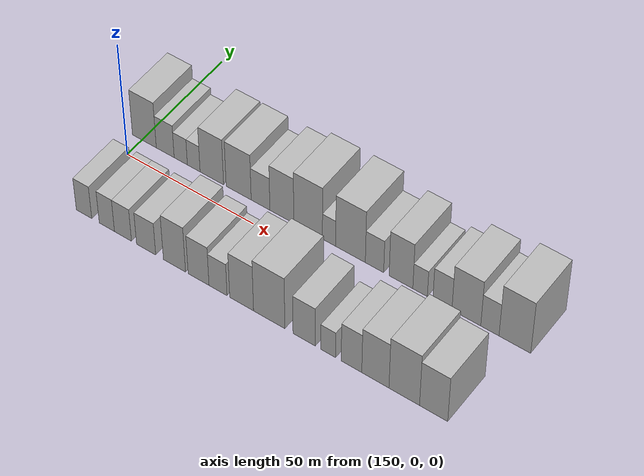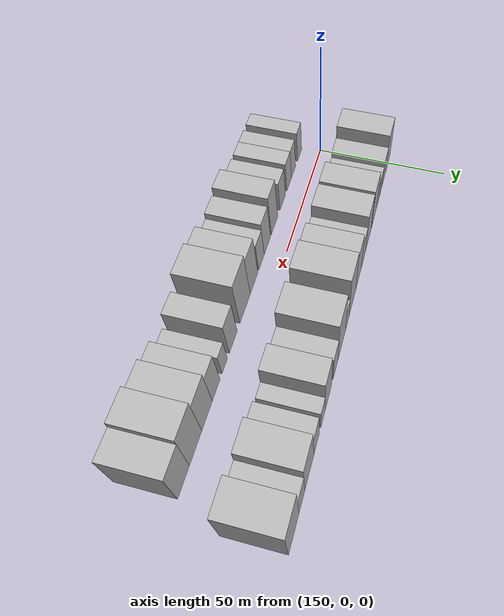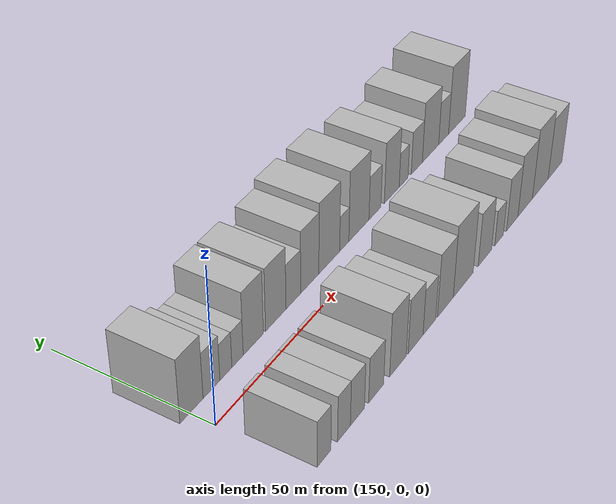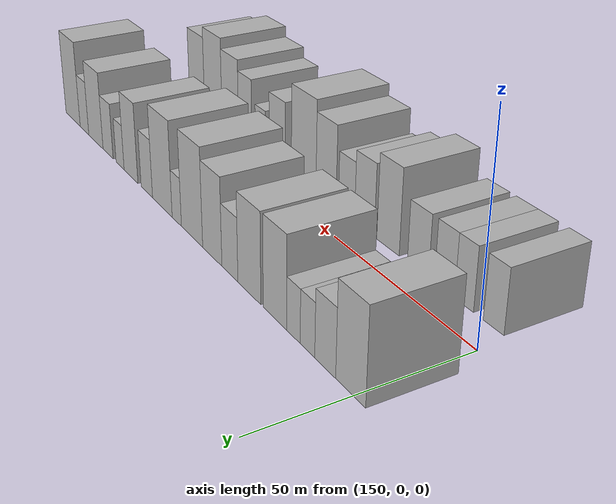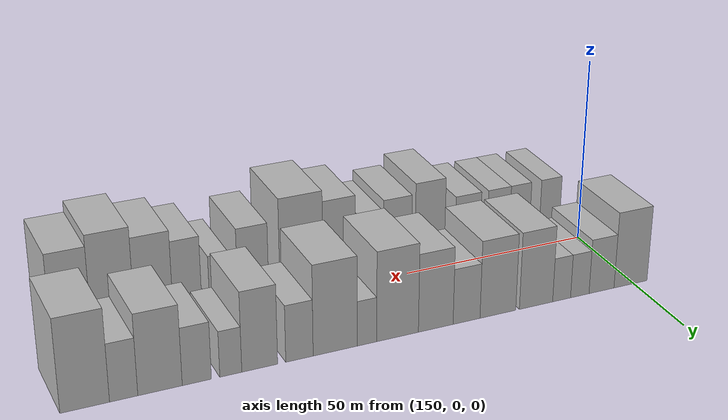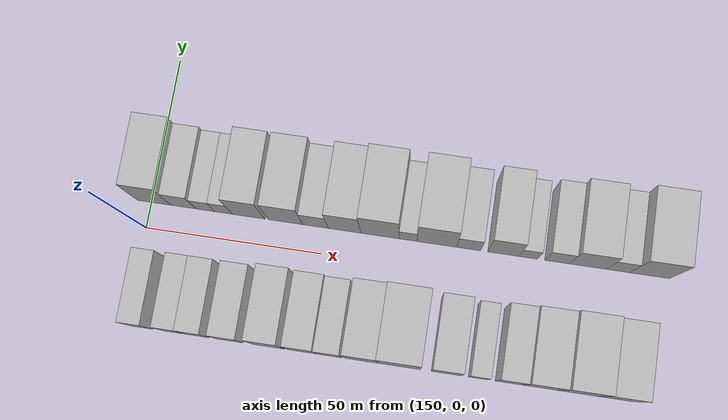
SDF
<sdf version="1.6">
 <world name="default">
  <model name="building_16">
   <static>1</static>
   <pose>150.9359 17.5000 0 0.000000 0.000000 1.570796</pose>
   <link name="link">
    <pose>0 0 10.50 0 0 0</pose>
    <collision name="collision"><geometry><box><size>20.0000 9.7018 21.0000</size></box></geometry></collision>
    <visual name="visual">
     <cast_shadows>0</cast_shadows>
     <geometry><box><size>20.0000 9.7018 21.0000</size></box></geometry>
     <material>
      <script>
       <uri>model://HANNAS_wall/materials/scripts</uri>
       <uri>model://HANNAS_wall/materials/textures</uri>
       <name>vrc/HANNAS_wall</name>
      </script>
     </material>
    </visual>
   </link>
  </model>
  <model name="building_17">
   <static>1</static>
   <pose>159.3956 17.5000 0 0.000000 0.000000 1.570796</pose>
   <link name="link">
    <pose>0 0 7.50 0 0 0</pose>
    <collision name="collision"><geometry><box><size>20.0000 7.2177 15.0000</size></box></geometry></collision>
    <visual name="visual">
     <cast_shadows>0</cast_shadows>
     <geometry><box><size>20.0000 7.2177 15.0000</size></box></geometry>
     <material>
      <script>
       <uri>model://HANNAS_wall/materials/scripts</uri>
       <uri>model://HANNAS_wall/materials/textures</uri>
       <name>vrc/HANNAS_wall</name>
      </script>
     </material>
    </visual>
   </link>
  </model>
  <model name="building_18">
   <static>1</static>
   <pose>165.6512 17.5000 0 0.000000 0.000000 1.570796</pose>
   <link name="link">
    <pose>0 0 6.00 0 0 0</pose>
    <collision name="collision"><geometry><box><size>20.0000 5.2935 12.0000</size></box></geometry></collision>
    <visual name="visual">
     <cast_shadows>0</cast_shadows>
     <geometry><box><size>20.0000 5.2935 12.0000</size></box></geometry>
     <material>
      <script>
       <uri>model://HANNAS_wall/materials/scripts</uri>
       <uri>model://HANNAS_wall/materials/textures</uri>
       <name>vrc/HANNAS_wall</name>
      </script>
     </material>
    </visual>
   </link>
  </model>
  <model name="building_19">
   <static>1</static>
   <pose>170.8365 17.5000 0 0.000000 0.000000 1.570796</pose>
   <link name="link">
    <pose>0 0 6.00 0 0 0</pose>
    <collision name="collision"><geometry><box><size>20.0000 5.0772 12.0000</size></box></geometry></collision>
    <visual name="visual">
     <cast_shadows>0</cast_shadows>
     <geometry><box><size>20.0000 5.0772 12.0000</size></box></geometry>
     <material>
      <script>
       <uri>model://HANNAS_wall/materials/scripts</uri>
       <uri>model://HANNAS_wall/materials/textures</uri>
       <name>vrc/HANNAS_wall</name>
      </script>
     </material>
    </visual>
   </link>
  </model>
  <model name="building_20">
   <static>1</static>
   <pose>178.0342 17.5000 0 0.000000 0.000000 1.570796</pose>
   <link name="link">
    <pose>0 0 10.50 0 0 0</pose>
    <collision name="collision"><geometry><box><size>20.0000 9.3181 21.0000</size></box></geometry></collision>
    <visual name="visual">
     <cast_shadows>0</cast_shadows>
     <geometry><box><size>20.0000 9.3181 21.0000</size></box></geometry>
     <material>
      <script>
       <uri>model://HANNAS_wall/materials/scripts</uri>
       <uri>model://HANNAS_wall/materials/textures</uri>
       <name>vrc/HANNAS_wall</name>
      </script>
     </material>
    </visual>
   </link>
  </model>
  <model name="building_21">
   <static>1</static>
   <pose>188.6076 17.5000 0 0.000000 0.000000 1.570796</pose>
   <link name="link">
    <pose>0 0 10.50 0 0 0</pose>
    <collision name="collision"><geometry><box><size>20.0000 9.8288 21.0000</size></box></geometry></collision>
    <visual name="visual">
     <cast_shadows>0</cast_shadows>
     <geometry><box><size>20.0000 9.8288 21.0000</size></box></geometry>
     <material>
      <script>
       <uri>model://HANNAS_wall/materials/scripts</uri>
       <uri>model://HANNAS_wall/materials/textures</uri>
       <name>vrc/HANNAS_wall</name>
      </script>
     </material>
    </visual>
   </link>
  </model>
  <model name="building_22">
   <static>1</static>
   <pose>197.1594 17.5000 0 0.000000 0.000000 1.570796</pose>
   <link name="link">
    <pose>0 0 7.50 0 0 0</pose>
    <collision name="collision"><geometry><box><size>20.0000 7.2749 15.0000</size></box></geometry></collision>
    <visual name="visual">
     <cast_shadows>0</cast_shadows>
     <geometry><box><size>20.0000 7.2749 15.0000</size></box></geometry>
     <material>
      <script>
       <uri>model://HANNAS_wall/materials/scripts</uri>
       <uri>model://HANNAS_wall/materials/textures</uri>
       <name>vrc/HANNAS_wall</name>
      </script>
     </material>
    </visual>
   </link>
  </model>
  <model name="building_23">
   <static>1</static>
   <pose>205.4156 17.5000 0 0.000000 0.000000 1.570796</pose>
   <link name="link">
    <pose>0 0 10.50 0 0 0</pose>
    <collision name="collision"><geometry><box><size>20.0000 9.2373 21.0000</size></box></geometry></collision>
    <visual name="visual">
     <cast_shadows>0</cast_shadows>
     <geometry><box><size>20.0000 9.2373 21.0000</size></box></geometry>
     <material>
      <script>
       <uri>model://HANNAS_wall/materials/scripts</uri>
       <uri>model://HANNAS_wall/materials/textures</uri>
       <name>vrc/HANNAS_wall</name>
      </script>
     </material>
    </visual>
   </link>
  </model>
  <model name="building_24">
   <static>1</static>
   <pose>215.4934 17.5000 0 0.000000 0.000000 1.570796</pose>
   <link name="link">
    <pose>0 0 12.00 0 0 0</pose>
    <collision name="collision"><geometry><box><size>20.0000 10.9183 24.0000</size></box></geometry></collision>
    <visual name="visual">
     <cast_shadows>0</cast_shadows>
     <geometry><box><size>20.0000 10.9183 24.0000</size></box></geometry>
     <material>
      <script>
       <uri>model://HANNAS_wall/materials/scripts</uri>
       <uri>model://HANNAS_wall/materials/textures</uri>
       <name>vrc/HANNAS_wall</name>
      </script>
     </material>
    </visual>
   </link>
  </model>
  <model name="building_25">
   <static>1</static>
   <pose>223.4560 17.5000 0 0.000000 0.000000 1.570796</pose>
   <link name="link">
    <pose>0 0 6.00 0 0 0</pose>
    <collision name="collision"><geometry><box><size>20.0000 5.0069 12.0000</size></box></geometry></collision>
    <visual name="visual">
     <cast_shadows>0</cast_shadows>
     <geometry><box><size>20.0000 5.0069 12.0000</size></box></geometry>
     <material>
      <script>
       <uri>model://HANNAS_wall/materials/scripts</uri>
       <uri>model://HANNAS_wall/materials/textures</uri>
       <name>vrc/HANNAS_wall</name>
      </script>
     </material>
    </visual>
   </link>
  </model>
  <model name="building_26">
   <static>1</static>
   <pose>231.5347 17.5000 0 0.000000 0.000000 1.570796</pose>
   <link name="link">
    <pose>0 0 12.00 0 0 0</pose>
    <collision name="collision"><geometry><box><size>20.0000 11.1506 24.0000</size></box></geometry></collision>
    <visual name="visual">
     <cast_shadows>0</cast_shadows>
     <geometry><box><size>20.0000 11.1506 24.0000</size></box></geometry>
     <material>
      <script>
       <uri>model://HANNAS_wall/materials/scripts</uri>
       <uri>model://HANNAS_wall/materials/textures</uri>
       <name>vrc/HANNAS_wall</name>
      </script>
     </material>
    </visual>
   </link>
  </model>
  <model name="building_27">
   <static>1</static>
   <pose>240.5277 17.5000 0 0.000000 0.000000 1.570796</pose>
   <link name="link">
    <pose>0 0 7.50 0 0 0</pose>
    <collision name="collision"><geometry><box><size>20.0000 6.8353 15.0000</size></box></geometry></collision>
    <visual name="visual">
     <cast_shadows>0</cast_shadows>
     <geometry><box><size>20.0000 6.8353 15.0000</size></box></geometry>
     <material>
      <script>
       <uri>model://HANNAS_wall/materials/scripts</uri>
       <uri>model://HANNAS_wall/materials/textures</uri>
       <name>vrc/HANNAS_wall</name>
      </script>
     </material>
    </visual>
   </link>
  </model>
  <model name="building_28">
   <static>1</static>
   <pose>250.3241 17.5000 0 0.000000 0.000000 1.570796</pose>
   <link name="link">
    <pose>0 0 10.50 0 0 0</pose>
    <collision name="collision"><geometry><box><size>20.0000 8.7576 21.0000</size></box></geometry></collision>
    <visual name="visual">
     <cast_shadows>0</cast_shadows>
     <geometry><box><size>20.0000 8.7576 21.0000</size></box></geometry>
     <material>
      <script>
       <uri>model://HANNAS_wall/materials/scripts</uri>
       <uri>model://HANNAS_wall/materials/textures</uri>
       <name>vrc/HANNAS_wall</name>
      </script>
     </material>
    </visual>
   </link>
  </model>
  <model name="building_29">
   <static>1</static>
   <pose>257.3588 17.5000 0 0.000000 0.000000 1.570796</pose>
   <link name="link">
    <pose>0 0 6.00 0 0 0</pose>
    <collision name="collision"><geometry><box><size>20.0000 5.3117 12.0000</size></box></geometry></collision>
    <visual name="visual">
     <cast_shadows>0</cast_shadows>
     <geometry><box><size>20.0000 5.3117 12.0000</size></box></geometry>
     <material>
      <script>
       <uri>model://HANNAS_wall/materials/scripts</uri>
       <uri>model://HANNAS_wall/materials/textures</uri>
       <name>vrc/HANNAS_wall</name>
      </script>
     </material>
    </visual>
   </link>
  </model>
  <model name="building_30">
   <static>1</static>
   <pose>265.4738 17.5000 0 0.000000 0.000000 1.570796</pose>
   <link name="link">
    <pose>0 0 7.50 0 0 0</pose>
    <collision name="collision"><geometry><box><size>20.0000 6.9183 15.0000</size></box></geometry></collision>
    <visual name="visual">
     <cast_shadows>0</cast_shadows>
     <geometry><box><size>20.0000 6.9183 15.0000</size></box></geometry>
     <material>
      <script>
       <uri>model://HANNAS_wall/materials/scripts</uri>
       <uri>model://HANNAS_wall/materials/textures</uri>
       <name>vrc/HANNAS_wall</name>
      </script>
     </material>
    </visual>
   </link>
  </model>
  <model name="building_31">
   <static>1</static>
   <pose>274.1179 17.5000 0 0.000000 0.000000 1.570796</pose>
   <link name="link">
    <pose>0 0 10.50 0 0 0</pose>
    <collision name="collision"><geometry><box><size>20.0000 10.3699 21.0000</size></box></geometry></collision>
    <visual name="visual">
     <cast_shadows>0</cast_shadows>
     <geometry><box><size>20.0000 10.3699 21.0000</size></box></geometry>
     <material>
      <script>
       <uri>model://HANNAS_wall/materials/scripts</uri>
       <uri>model://HANNAS_wall/materials/textures</uri>
       <name>vrc/HANNAS_wall</name>
      </script>
     </material>
    </visual>
   </link>
  </model>
  <model name="building_32">
   <static>1</static>
   <pose>282.5498 17.5000 0 0.000000 0.000000 1.570796</pose>
   <link name="link">
    <pose>0 0 7.50 0 0 0</pose>
    <collision name="collision"><geometry><box><size>20.0000 6.4940 15.0000</size></box></geometry></collision>
    <visual name="visual">
     <cast_shadows>0</cast_shadows>
     <geometry><box><size>20.0000 6.4940 15.0000</size></box></geometry>
     <material>
      <script>
       <uri>model://HANNAS_wall/materials/scripts</uri>
       <uri>model://HANNAS_wall/materials/textures</uri>
       <name>vrc/HANNAS_wall</name>
      </script>
     </material>
    </visual>
   </link>
  </model>
  <model name="building_33">
   <static>1</static>
   <pose>291.4009 17.5000 0 0.000000 0.000000 1.570796</pose>
   <link name="link">
    <pose>0 0 12.00 0 0 0</pose>
    <collision name="collision"><geometry><box><size>20.0000 11.2081 24.0000</size></box></geometry></collision>
    <visual name="visual">
     <cast_shadows>0</cast_shadows>
     <geometry><box><size>20.0000 11.2081 24.0000</size></box></geometry>
     <material>
      <script>
       <uri>model://HANNAS_wall/materials/scripts</uri>
       <uri>model://HANNAS_wall/materials/textures</uri>
       <name>vrc/HANNAS_wall</name>
      </script>
     </material>
    </visual>
   </link>
  </model>
  <model name="building_50">
   <static>1</static>
   <pose>154.5050 -17.5000 0 0.000000 0.000000 1.570796</pose>
   <link name="link">
    <pose>0 0 7.50 0 0 0</pose>
    <collision name="collision"><geometry><box><size>20.0000 6.1881 15.0000</size></box></geometry></collision>
    <visual name="visual">
     <cast_shadows>0</cast_shadows>
     <geometry><box><size>20.0000 6.1881 15.0000</size></box></geometry>
     <material>
      <script>
       <uri>model://HANNAS_wall/materials/scripts</uri>
       <uri>model://HANNAS_wall/materials/textures</uri>
       <name>vrc/HANNAS_wall</name>
      </script>
     </material>
    </visual>
   </link>
  </model>
  <model name="building_51">
   <static>1</static>
   <pose>163.6264 -17.5000 0 0.000000 0.000000 1.570796</pose>
   <link name="link">
    <pose>0 0 7.50 0 0 0</pose>
    <collision name="collision"><geometry><box><size>20.0000 6.0548 15.0000</size></box></geometry></collision>
    <visual name="visual">
     <cast_shadows>0</cast_shadows>
     <geometry><box><size>20.0000 6.0548 15.0000</size></box></geometry>
     <material>
      <script>
       <uri>model://HANNAS_wall/materials/scripts</uri>
       <uri>model://HANNAS_wall/materials/textures</uri>
       <name>vrc/HANNAS_wall</name>
      </script>
     </material>
    </visual>
   </link>
  </model>
  <model name="building_52">
   <static>1</static>
   <pose>170.0151 -17.5000 0 0.000000 0.000000 1.570796</pose>
   <link name="link">
    <pose>0 0 7.50 0 0 0</pose>
    <collision name="collision"><geometry><box><size>20.0000 6.7226 15.0000</size></box></geometry></collision>
    <visual name="visual">
     <cast_shadows>0</cast_shadows>
     <geometry><box><size>20.0000 6.7226 15.0000</size></box></geometry>
     <material>
      <script>
       <uri>model://HANNAS_wall/materials/scripts</uri>
       <uri>model://HANNAS_wall/materials/textures</uri>
       <name>vrc/HANNAS_wall</name>
      </script>
     </material>
    </visual>
   </link>
  </model>
  <model name="building_53">
   <static>1</static>
   <pose>179.1234 -17.5000 0 0.000000 0.000000 1.570796</pose>
   <link name="link">
    <pose>0 0 7.50 0 0 0</pose>
    <collision name="collision"><geometry><box><size>20.0000 7.4941 15.0000</size></box></geometry></collision>
    <visual name="visual">
     <cast_shadows>0</cast_shadows>
     <geometry><box><size>20.0000 7.4941 15.0000</size></box></geometry>
     <material>
      <script>
       <uri>model://HANNAS_wall/materials/scripts</uri>
       <uri>model://HANNAS_wall/materials/textures</uri>
       <name>vrc/HANNAS_wall</name>
      </script>
     </material>
    </visual>
   </link>
  </model>
  <model name="building_54">
   <static>1</static>
   <pose>190.1580 -17.5000 0 0.000000 0.000000 1.570796</pose>
   <link name="link">
    <pose>0 0 10.50 0 0 0</pose>
    <collision name="collision"><geometry><box><size>20.0000 8.5752 21.0000</size></box></geometry></collision>
    <visual name="visual">
     <cast_shadows>0</cast_shadows>
     <geometry><box><size>20.0000 8.5752 21.0000</size></box></geometry>
     <material>
      <script>
       <uri>model://HANNAS_wall/materials/scripts</uri>
       <uri>model://HANNAS_wall/materials/textures</uri>
       <name>vrc/HANNAS_wall</name>
      </script>
     </material>
    </visual>
   </link>
  </model>
  <model name="building_55">
   <static>1</static>
   <pose>199.4403 -17.5000 0 0.000000 0.000000 1.570796</pose>
   <link name="link">
    <pose>0 0 9.00 0 0 0</pose>
    <collision name="collision"><geometry><box><size>20.0000 7.9893 18.0000</size></box></geometry></collision>
    <visual name="visual">
     <cast_shadows>0</cast_shadows>
     <geometry><box><size>20.0000 7.9893 18.0000</size></box></geometry>
     <material>
      <script>
       <uri>model://HANNAS_wall/materials/scripts</uri>
       <uri>model://HANNAS_wall/materials/textures</uri>
       <name>vrc/HANNAS_wall</name>
      </script>
     </material>
    </visual>
   </link>
  </model>
  <model name="building_56">
   <static>1</static>
   <pose>206.8735 -17.5000 0 0.000000 0.000000 1.570796</pose>
   <link name="link">
    <pose>0 0 7.50 0 0 0</pose>
    <collision name="collision"><geometry><box><size>20.0000 6.8771 15.0000</size></box></geometry></collision>
    <visual name="visual">
     <cast_shadows>0</cast_shadows>
     <geometry><box><size>20.0000 6.8771 15.0000</size></box></geometry>
     <material>
      <script>
       <uri>model://HANNAS_wall/materials/scripts</uri>
       <uri>model://HANNAS_wall/materials/textures</uri>
       <name>vrc/HANNAS_wall</name>
      </script>
     </material>
    </visual>
   </link>
  </model>
  <model name="building_57">
   <static>1</static>
   <pose>215.8058 -17.5000 0 0.000000 0.000000 1.570796</pose>
   <link name="link">
    <pose>0 0 10.50 0 0 0</pose>
    <collision name="collision"><geometry><box><size>20.0000 8.9875 21.0000</size></box></geometry></collision>
    <visual name="visual">
     <cast_shadows>0</cast_shadows>
     <geometry><box><size>20.0000 8.9875 21.0000</size></box></geometry>
     <material>
      <script>
       <uri>model://HANNAS_wall/materials/scripts</uri>
       <uri>model://HANNAS_wall/materials/textures</uri>
       <name>vrc/HANNAS_wall</name>
      </script>
     </material>
    </visual>
   </link>
  </model>
  <model name="building_58">
   <static>1</static>
   <pose>226.1525 -17.5000 0 0.000000 0.000000 1.570796</pose>
   <link name="link">
    <pose>0 0 12.00 0 0 0</pose>
    <collision name="collision"><geometry><box><size>20.0000 11.7059 24.0000</size></box></geometry></collision>
    <visual name="visual">
     <cast_shadows>0</cast_shadows>
     <geometry><box><size>20.0000 11.7059 24.0000</size></box></geometry>
     <material>
      <script>
       <uri>model://HANNAS_wall/materials/scripts</uri>
       <uri>model://HANNAS_wall/materials/textures</uri>
       <name>vrc/HANNAS_wall</name>
      </script>
     </material>
    </visual>
   </link>
  </model>
  <model name="building_59">
   <static>1</static>
   <pose>239.1162 -17.5000 0 0.000000 0.000000 1.570796</pose>
   <link name="link">
    <pose>0 0 9.00 0 0 0</pose>
    <collision name="collision"><geometry><box><size>20.0000 8.2214 18.0000</size></box></geometry></collision>
    <visual name="visual">
     <cast_shadows>0</cast_shadows>
     <geometry><box><size>20.0000 8.2214 18.0000</size></box></geometry>
     <material>
      <script>
       <uri>model://HANNAS_wall/materials/scripts</uri>
       <uri>model://HANNAS_wall/materials/textures</uri>
       <name>vrc/HANNAS_wall</name>
      </script>
     </material>
    </visual>
   </link>
  </model>
  <model name="building_60">
   <static>1</static>
   <pose>247.9426 -17.5000 0 0.000000 0.000000 1.570796</pose>
   <link name="link">
    <pose>0 0 6.00 0 0 0</pose>
    <collision name="collision"><geometry><box><size>20.0000 5.4314 12.0000</size></box></geometry></collision>
    <visual name="visual">
     <cast_shadows>0</cast_shadows>
     <geometry><box><size>20.0000 5.4314 12.0000</size></box></geometry>
     <material>
      <script>
       <uri>model://HANNAS_wall/materials/scripts</uri>
       <uri>model://HANNAS_wall/materials/textures</uri>
       <name>vrc/HANNAS_wall</name>
      </script>
     </material>
    </visual>
   </link>
  </model>
  <model name="building_61">
   <static>1</static>
   <pose>256.3738 -17.5000 0 0.000000 0.000000 1.570796</pose>
   <link name="link">
    <pose>0 0 9.00 0 0 0</pose>
    <collision name="collision"><geometry><box><size>20.0000 7.4310 18.0000</size></box></geometry></collision>
    <visual name="visual">
     <cast_shadows>0</cast_shadows>
     <geometry><box><size>20.0000 7.4310 18.0000</size></box></geometry>
     <material>
      <script>
       <uri>model://HANNAS_wall/materials/scripts</uri>
       <uri>model://HANNAS_wall/materials/textures</uri>
       <name>vrc/HANNAS_wall</name>
      </script>
     </material>
    </visual>
   </link>
  </model>
  <model name="building_62">
   <static>1</static>
   <pose>264.9609 -17.5000 0 0.000000 0.000000 1.570796</pose>
   <link name="link">
    <pose>0 0 10.50 0 0 0</pose>
    <collision name="collision"><geometry><box><size>20.0000 9.7432 21.0000</size></box></geometry></collision>
    <visual name="visual">
     <cast_shadows>0</cast_shadows>
     <geometry><box><size>20.0000 9.7432 21.0000</size></box></geometry>
     <material>
      <script>
       <uri>model://HANNAS_wall/materials/scripts</uri>
       <uri>model://HANNAS_wall/materials/textures</uri>
       <name>vrc/HANNAS_wall</name>
      </script>
     </material>
    </visual>
   </link>
  </model>
  <model name="building_63">
   <static>1</static>
   <pose>275.2447 -17.5000 0 0.000000 0.000000 1.570796</pose>
   <link name="link">
    <pose>0 0 12.00 0 0 0</pose>
    <collision name="collision"><geometry><box><size>20.0000 10.8243 24.0000</size></box></geometry></collision>
    <visual name="visual">
     <cast_shadows>0</cast_shadows>
     <geometry><box><size>20.0000 10.8243 24.0000</size></box></geometry>
     <material>
      <script>
       <uri>model://HANNAS_wall/materials/scripts</uri>
       <uri>model://HANNAS_wall/materials/textures</uri>
       <name>vrc/HANNAS_wall</name>
      </script>
     </material>
    </visual>
   </link>
  </model>
  <model name="building_64">
   <static>1</static>
   <pose>285.6054 -17.5000 0 0.000000 0.000000 1.570796</pose>
   <link name="link">
    <pose>0 0 10.50 0 0 0</pose>
    <collision name="collision"><geometry><box><size>20.0000 9.8972 21.0000</size></box></geometry></collision>
    <visual name="visual">
     <cast_shadows>0</cast_shadows>
     <geometry><box><size>20.0000 9.8972 21.0000</size></box></geometry>
     <material>
      <script>
       <uri>model://HANNAS_wall/materials/scripts</uri>
       <uri>model://HANNAS_wall/materials/textures</uri>
       <name>vrc/HANNAS_wall</name>
      </script>
     </material>
    </visual>
   </link>
  </model>
 </world>
</sdf>
